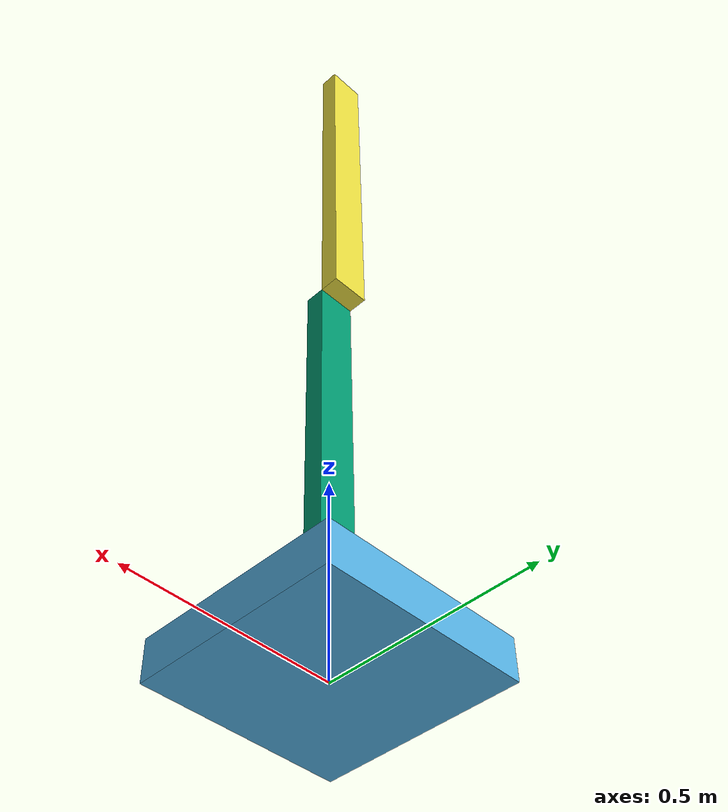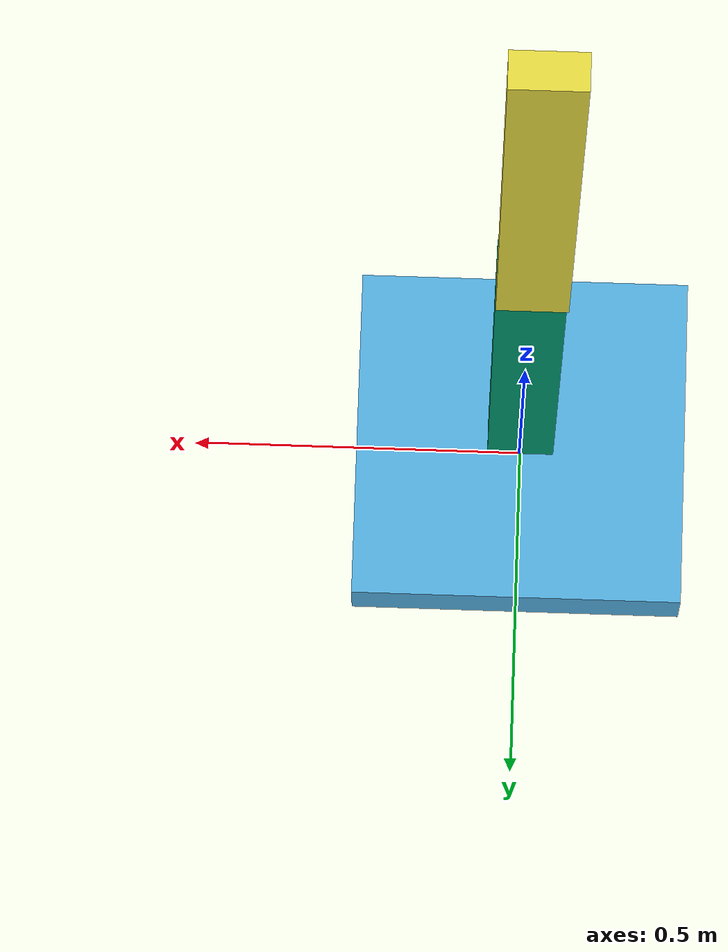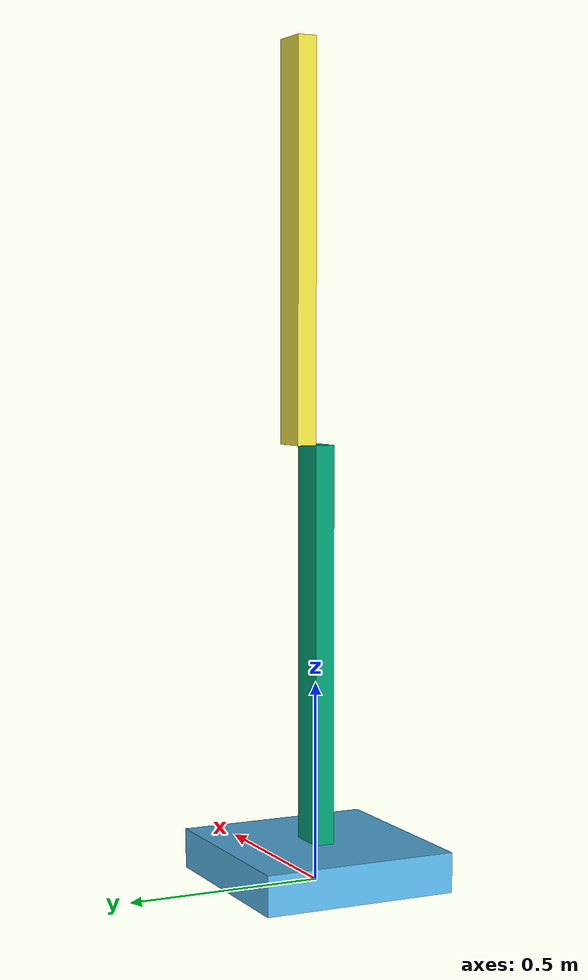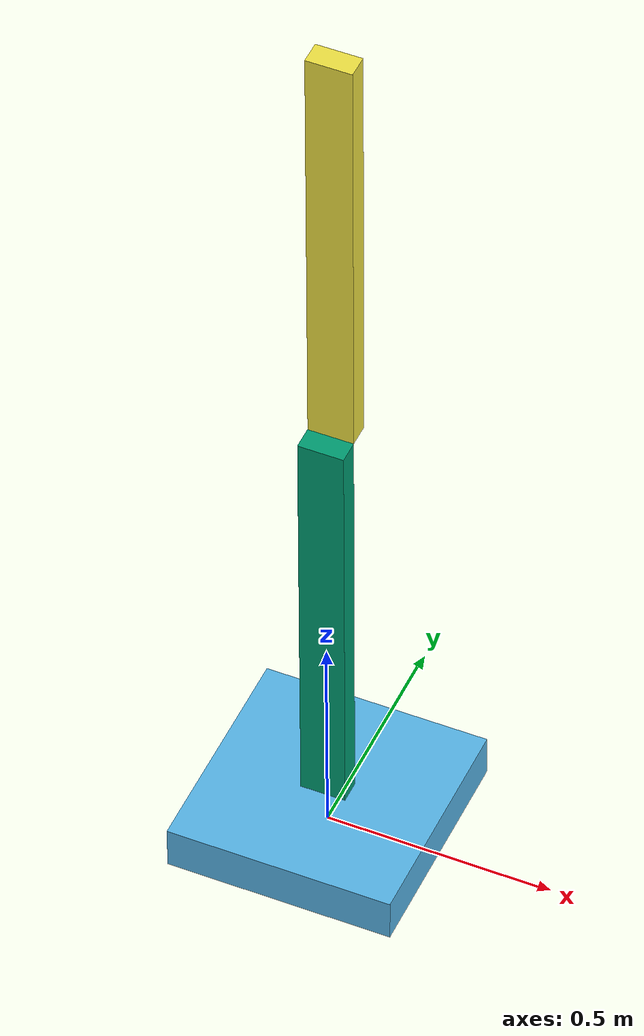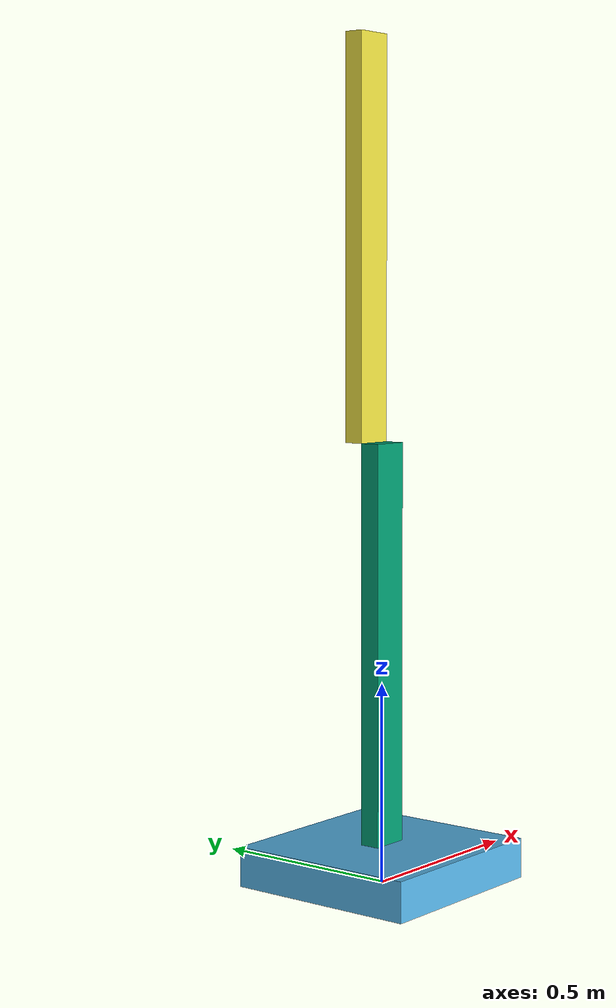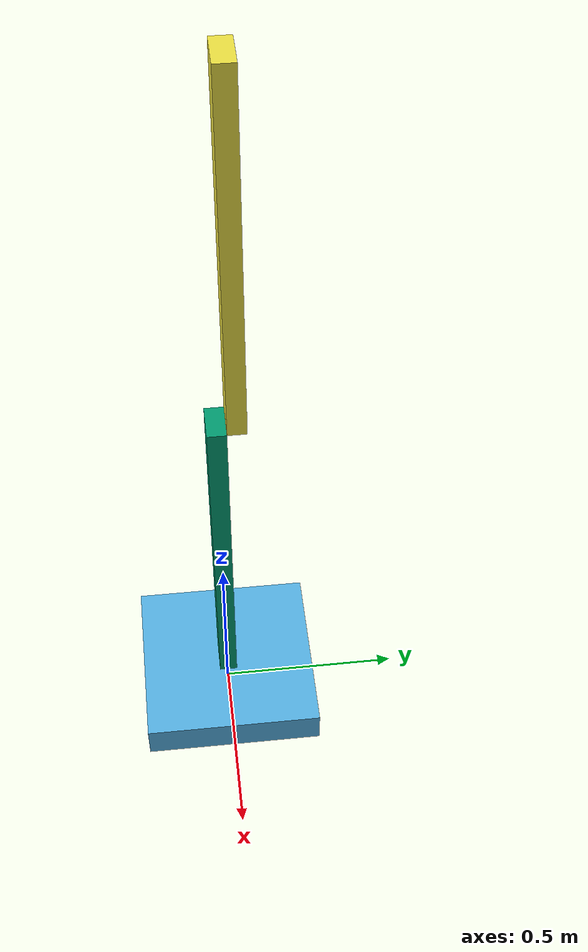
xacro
<?xml version="1.0"?>
<robot name="arm" xmlns:xacro="http://www.ros.org/wiki/xacro">

  <xacro:include filename="$(find differential)/urdf/exemplo2_arm.xacro" />

  <!--Base Footprint-->
  <link name="base_link">
  </link>

  <!--Base link-->
  <link name="base">
    <!-- Visual representation -->
    <visual>
      <origin xyz="0 0 0" rpy="0 0 0"/>
      <geometry>
        <box size="0.5 0.5 0.1"/>
      </geometry>
    </visual>

    <!-- Collision representation -->
    <collision>
      <origin xyz="0 0 0" rpy="0 0 0"/>
      <geometry>
        <box size="0.5 0.5 0.1"/>
      </geometry>
    </collision>

    <!-- Inertial properties -->
    <inertial>
      <origin xyz="0 0 0" rpy="0 0 0"/>
      <mass value="100.0"/>
      <inertia
        ixx="0.5" ixy="0.0" ixz="0.0"
        iyy="0.5" iyz="0.0"
        izz="0.1"/>
    </inertial>
  </link>
  <joint name="base_joint" type="fixed">
    <origin rpy="0 0 0" xyz="0 0 0.05" />
    <parent link="base_link" />
    <child link="base" />
  </joint>

  <!-- Arms -->
  <xacro:arm arm_name="arm1" parent="base">
    <origin rpy="0 0 0" xyz="0 0 0.05"/>
    <axis xyz="0 0 1" />
  </xacro:arm>
  <xacro:arm arm_name="arm2" parent="arm1">
    <origin rpy="0 0 0" xyz="0 0.05 1.0"/>
    <axis xyz="0 1 0" />
  </xacro:arm>

</robot>

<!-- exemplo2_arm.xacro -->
<robot xmlns:xacro="http://www.ros.org/wiki/xacro">

  <xacro:property name="arm_length" value="1.0" />
  <xacro:property name="arm_width" value="0.1" />
  <xacro:property name="arm_thickness" value="0.05" />
  <xacro:property name="arm_mass" value="1.0" />

  <!-- Arm Macro -->
  <xacro:macro name="arm" params="arm_name parent *origin *axis">
    <link name="${arm_name}">
      <visual>
        <origin xyz="0 0 ${arm_length/2}" rpy="0 0 0"/>
        <geometry>
          <box size="${arm_width} ${arm_thickness} ${arm_length}"/>
        </geometry>
      </visual>
      <collision>
        <origin xyz="0 0 ${arm_length/2}" rpy="0 0 0"/>
        <geometry>
          <box size="${arm_width} ${arm_thickness} ${arm_length}"/>
        </geometry>
      </collision>
      <inertial>
        <origin xyz="0 0 ${arm_length/2}" rpy="0 0 0"/>
        <mass value="${arm_mass}"/>
        <inertia
          ixx="${arm_width}" ixy="0.0" ixz="0.0"
          iyy="${arm_thickness}" iyz="0.0"
          izz="${arm_length}"/>
      </inertial>
    </link>
    <joint name="${arm_name}_joint" type="continuous">
      <parent link="${parent}" />
      <child link="${arm_name}" />
      <xacro:insert_block name="origin" />
      <xacro:insert_block name="axis" />
    </joint>
  </xacro:macro>

</robot>
